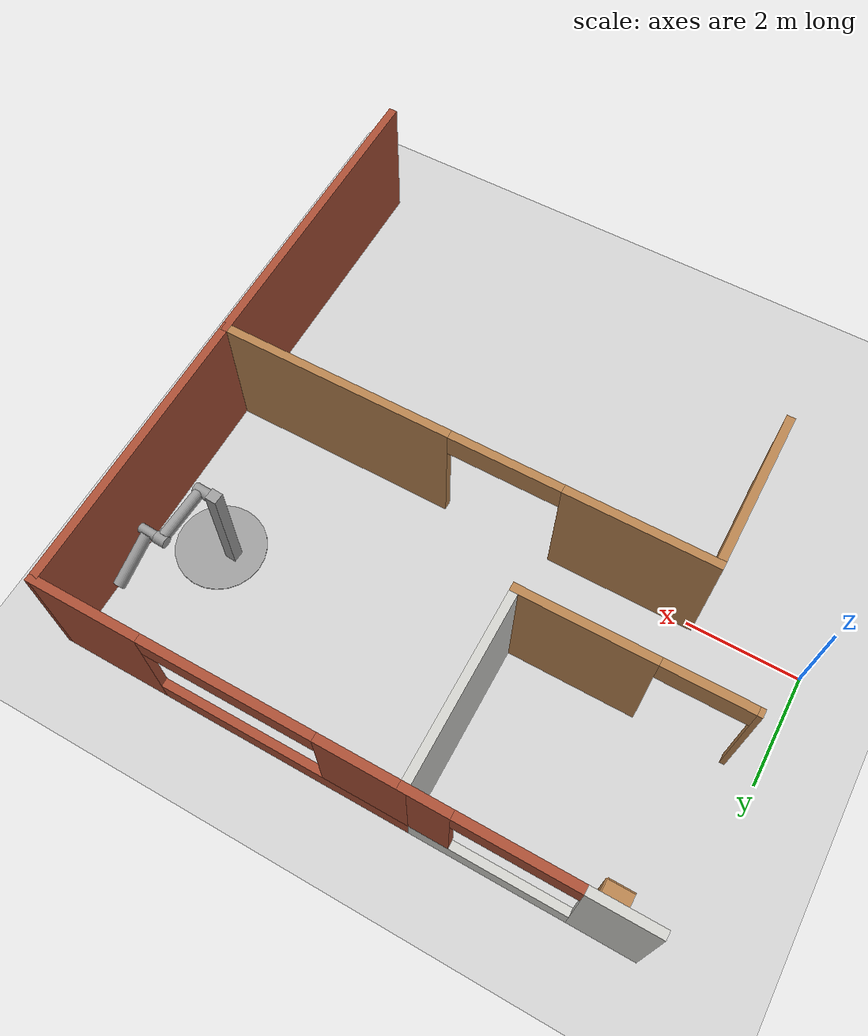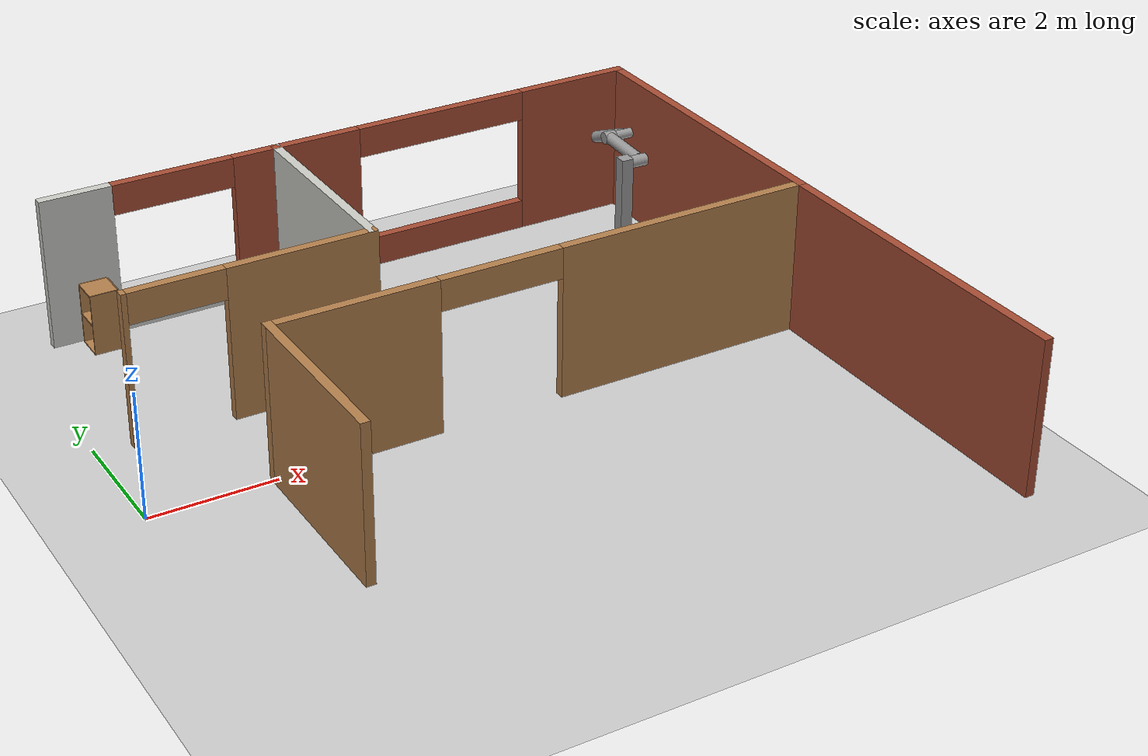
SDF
<sdf version="1.6">
 <world name="default">
  <model name="ground_plane">
   <static>1</static>
   <link name="link">
    <collision name="collision">
     <geometry><plane><normal>0 0 1</normal><size>100 100</size></plane></geometry>
     <surface><friction><ode><mu>100</mu><mu2>50</mu2></ode></friction></surface>
    </collision>
    <visual name="visual">
     <cast_shadows>0</cast_shadows>
     <geometry><plane><normal>0 0 1</normal><size>100 100</size></plane></geometry>
     <material>
      <script><uri>file://media/materials/scripts/gazebo.material</uri><name>Gazebo/Grey</name></script>
     </material>
    </visual>
   </link>
  </model>
  <model name="double_pendulum_with_base">
   <link name="base">
    <inertial>
     <mass>100</mass>
     <inertia><ixx>1</ixx><ixy>0</ixy><ixz>0</ixz><iyy>1</iyy><iyz>0</iyz><izz>1</izz></inertia>
    </inertial>
    <visual name="vis_plate_on_ground">
     <pose>0 0 0.01 0 -0 0</pose>
     <geometry><cylinder><radius>0.8</radius><length>0.02</length></cylinder></geometry>
     <material>
      <script><uri>file://media/materials/scripts/gazebo.material</uri><name>Gazebo/Grey</name></script>
     </material>
    </visual>
    <visual name="vis_pole">
     <pose>-0.275 0 1.1 0 -0 0</pose>
     <geometry><box><size>0.2 0.2 2.2</size></box></geometry>
     <material>
      <script><uri>file://media/materials/scripts/gazebo.material</uri><name>Gazebo/Grey</name></script>
     </material>
    </visual>
    <collision name="col_plate_on_ground">
     <pose>0 0 0.01 0 -0 0</pose>
     <geometry><cylinder><radius>0.8</radius><length>0.02</length></cylinder></geometry>
    </collision>
    <collision name="col_pole">
     <pose>-0.275 0 1.1 0 -0 0</pose>
     <geometry><box><size>0.2 0.2 2.2</size></box></geometry>
    </collision>
   </link>
   <link name="upper_link">
    <pose>0 0 2.1 -1.5708 0 0</pose>
    <inertial>
     <pose>0 0 0.5 0 -0 0</pose>
     <inertia><ixx>1</ixx><ixy>0</ixy><ixz>0</ixz><iyy>1</iyy><iyz>0</iyz><izz>1</izz></inertia>
     <mass>1</mass>
    </inertial>
    <visual name="vis_upper_joint">
     <pose>-0.05 0 0 3.14159 1.57079 3.14159</pose>
     <geometry><cylinder><radius>0.1</radius><length>0.3</length></cylinder></geometry>
     <material>
      <script><uri>file://media/materials/scripts/gazebo.material</uri><name>Gazebo/Grey</name></script>
     </material>
    </visual>
    <visual name="vis_lower_joint">
     <pose>0 0 1 3.14159 1.57079 3.14159</pose>
     <geometry><cylinder><radius>0.1</radius><length>0.2</length></cylinder></geometry>
     <material>
      <script><uri>file://media/materials/scripts/gazebo.material</uri><name>Gazebo/Grey</name></script>
     </material>
    </visual>
    <visual name="vis_cylinder">
     <pose>0 0 0.5 0 -0 0</pose>
     <geometry><cylinder><radius>0.1</radius><length>0.9</length></cylinder></geometry>
     <material>
      <script><uri>file://media/materials/scripts/gazebo.material</uri><name>Gazebo/Grey</name></script>
     </material>
    </visual>
    <collision name="col_upper_joint">
     <pose>-0.05 0 0 3.14159 1.57079 3.14159</pose>
     <geometry><cylinder><radius>0.1</radius><length>0.3</length></cylinder></geometry>
    </collision>
    <collision name="col_lower_joint">
     <pose>0 0 1 3.14159 1.57079 3.14159</pose>
     <geometry><cylinder><radius>0.1</radius><length>0.2</length></cylinder></geometry>
    </collision>
    <collision name="col_cylinder">
     <pose>0 0 0.5 0 -0 0</pose>
     <geometry><cylinder><radius>0.1</radius><length>0.9</length></cylinder></geometry>
    </collision>
   </link>
   <link name="lower_link">
    <pose>0.25 1 2.1 -2 0 0</pose>
    <inertial>
     <pose>0 0 0.5 0 -0 0</pose>
     <inertia><ixx>1</ixx><ixy>0</ixy><ixz>0</ixz><iyy>1</iyy><iyz>0</iyz><izz>1</izz></inertia>
     <mass>1</mass>
    </inertial>
    <visual name="vis_lower_joint">
     <pose>0 0 0 3.14159 1.57079 3.14159</pose>
     <geometry><cylinder><radius>0.08</radius><length>0.3</length></cylinder></geometry>
     <material>
      <script><uri>file://media/materials/scripts/gazebo.material</uri><name>Gazebo/Grey</name></script>
     </material>
    </visual>
    <visual name="vis_cylinder">
     <pose>0 0 0.5 0 -0 0</pose>
     <geometry><cylinder><radius>0.1</radius><length>0.9</length></cylinder></geometry>
     <material>
      <script><uri>file://media/materials/scripts/gazebo.material</uri><name>Gazebo/Grey</name></script>
     </material>
    </visual>
    <collision name="col_lower_joint">
     <pose>0 0 0 3.14159 1.57079 3.14159</pose>
     <geometry><cylinder><radius>0.08</radius><length>0.3</length></cylinder></geometry>
    </collision>
    <collision name="col_cylinder">
     <pose>0 0 0.5 0 -0 0</pose>
     <geometry><cylinder><radius>0.1</radius><length>0.9</length></cylinder></geometry>
    </collision>
   </link>
   <joint name="upper_joint" type="revolute">
    <parent>base</parent>
    <child>upper_link</child>
    <axis>
     <xyz>1 0 0</xyz>
     <use_parent_model_frame>1</use_parent_model_frame>
     <limit><lower>-1e+16</lower><upper>1e+16</upper></limit>
     <dynamics><spring_reference>0</spring_reference><spring_stiffness>0</spring_stiffness></dynamics>
    </axis>
   </joint>
   <joint name="lower_joint" type="revolute">
    <parent>upper_link</parent>
    <child>lower_link</child>
    <axis>
     <xyz>1 0 0</xyz>
     <use_parent_model_frame>1</use_parent_model_frame>
     <limit><lower>-1e+16</lower><upper>1e+16</upper></limit>
     <dynamics><spring_reference>0</spring_reference><spring_stiffness>0</spring_stiffness></dynamics>
    </axis>
   </joint>
   <pose>9.61593 2.60869 -2e-06 0 1.3e-05 -0.050145</pose>
  </model>
  <model name="cabinet">
   <static>1</static>
   <link name="cabinet_bottom_plate">
    <inertial>
     <pose>0 0 -1 0 -0 0</pose>
     <inertia><ixx>2.05</ixx><ixy>0</ixy><ixz>0</ixz><iyy>2.05</iyy><iyz>0</iyz><izz>2.05</izz></inertia>
     <mass>25</mass>
    </inertial>
    <collision name="cabinet_bottom_plate_geom">
     <pose>0 0 0.01 0 -0 0</pose>
     <geometry><box><size>0.45 0.45 0.02</size></box></geometry>
    </collision>
    <visual name="cabinet_bottom_plate_geom_visual">
     <pose>0 0 0.01 0 -0 0</pose>
     <geometry><box><size>0.45 0.45 0.02</size></box></geometry>
     <material>
      <script><uri>file://media/materials/scripts/gazebo.material</uri><name>Gazebo/Wood</name></script>
     </material>
    </visual>
    <collision name="cabinet_bottom_plate_geom_cabinet_back_plate">
     <pose>0.235 0 0.51 0 -0 0</pose>
     <geometry><box><size>0.02 0.45 1.02</size></box></geometry>
    </collision>
    <visual name="cabinet_bottom_plate_geom_cabinet_back_plate_visual">
     <pose>0.235 0 0.51 0 -0 0</pose>
     <geometry><box><size>0.02 0.45 1.02</size></box></geometry>
     <material>
      <script><uri>file://media/materials/scripts/gazebo.material</uri><name>Gazebo/Wood</name></script>
     </material>
    </visual>
    <collision name="cabinet_bottom_plate_geom_cabinet_left_plate">
     <pose>0 0.235 0.51 0 -0 0</pose>
     <geometry><box><size>0.45 0.02 1.02</size></box></geometry>
    </collision>
    <visual name="cabinet_bottom_plate_geom_cabinet_left_plate_visual">
     <pose>0 0.235 0.51 0 -0 0</pose>
     <geometry><box><size>0.45 0.02 1.02</size></box></geometry>
     <material>
      <script><uri>file://media/materials/scripts/gazebo.material</uri><name>Gazebo/Wood</name></script>
     </material>
    </visual>
    <collision name="cabinet_bottom_plate_geom_cabinet_middle_plate">
     <pose>0 0 0.51 0 -0 0</pose>
     <geometry><box><size>0.45 0.45 0.02</size></box></geometry>
    </collision>
    <visual name="cabinet_bottom_plate_geom_cabinet_middle_plate_visual">
     <pose>0 0 0.51 0 -0 0</pose>
     <geometry><box><size>0.45 0.45 0.02</size></box></geometry>
     <material>
      <script><uri>file://media/materials/scripts/gazebo.material</uri><name>Gazebo/Wood</name></script>
     </material>
    </visual>
    <collision name="cabinet_bottom_plate_geom_cabinet_right_plate">
     <pose>0 -0.235 0.51 0 -0 0</pose>
     <geometry><box><size>0.45 0.02 1.02</size></box></geometry>
    </collision>
    <visual name="cabinet_bottom_plate_geom_cabinet_right_plate_visual">
     <pose>0 -0.235 0.51 0 -0 0</pose>
     <geometry><box><size>0.45 0.02 1.02</size></box></geometry>
     <material>
      <script><uri>file://media/materials/scripts/gazebo.material</uri><name>Gazebo/Wood</name></script>
     </material>
    </visual>
    <collision name="cabinet_bottom_plate_geom_cabinet_top_plate">
     <pose>0 0 1.01 0 -0 0</pose>
     <geometry><box><size>0.45 0.45 0.02</size></box></geometry>
    </collision>
    <visual name="cabinet_bottom_plate_geom_cabinet_top_plate_visual">
     <pose>0 0 1.01 0 -0 0</pose>
     <geometry><box><size>0.45 0.45 0.02</size></box></geometry>
     <material>
      <script><uri>file://media/materials/scripts/gazebo.material</uri><name>Gazebo/Wood</name></script>
     </material>
    </visual>
   </link>
   <pose>1.23212 4.82503 0 0 -0 0</pose>
  </model>
  <model name="mybuilding_0_0">
   <link name="Wall_110">
    <pose>7.02969 -0.662398 0 0 -0 1.5708</pose>
    <visual name="Wall_110_Visual">
     <pose>0 0 1.25 0 -0 0</pose>
     <geometry><box><size>5.666 0.15 2.5</size></box></geometry>
     <material>
      <script><uri>file://media/materials/scripts/gazebo.material</uri><name>Gazebo/Bricks</name></script>
      <ambient>1 1 1 1</ambient>
      <diffuse>1 1 1 1</diffuse>
      <specular>0.2 0.2 0.2 1</specular>
      <emissive>0 0 0 1</emissive>
     </material>
    </visual>
    <collision name="Wall_110_Collision">
     <pose>0 0 1.25 0 -0 0</pose>
     <geometry><box><size>5.666 0.15 2.5</size></box></geometry>
     <surface>
      <friction>
       <ode><mu>1</mu><mu2>1</mu2><fdir1>0 0 0</fdir1><slip1>0</slip1><slip2>0</slip2></ode>
       <torsional>
        <coefficient>1</coefficient>
        <patch_radius>0</patch_radius>
        <surface_radius>0</surface_radius>
        <use_patch_radius>1</use_patch_radius>
        <ode><slip>0</slip></ode>
       </torsional>
      </friction>
      <bounce><restitution_coefficient>0</restitution_coefficient><threshold>1e+06</threshold></bounce>
      <contact>
       <collide_without_contact>0</collide_without_contact>
       <collide_without_contact_bitmask>1</collide_without_contact_bitmask>
       <collide_bitmask>1</collide_bitmask>
       <ode>
        <soft_cfm>0</soft_cfm>
        <soft_erp>0.2</soft_erp>
        <kp>1e+13</kp>
        <kd>1</kd>
        <max_vel>0.01</max_vel>
        <min_depth>0</min_depth>
       </ode>
       <bullet>
        <split_impulse>1</split_impulse>
        <split_impulse_penetration_threshold>-0.01</split_impulse_penetration_threshold>
        <soft_cfm>0</soft_cfm>
        <soft_erp>0.2</soft_erp>
        <kp>1e+13</kp>
        <kd>1</kd>
       </bullet>
      </contact>
     </surface>
    </collision>
   </link>
   <link name="Wall_112">
    <pose>2.60469 2.0956 0 0 -0 3.14159</pose>
    <visual name="Wall_112_Visual_0">
     <pose>-2.34058 0 1.25 0 -0 0</pose>
     <geometry><box><size>4.31883 0.15 2.5</size></box></geometry>
     <material>
      <script><uri>file://media/materials/scripts/gazebo.material</uri><name>Gazebo/Wood</name></script>
      <ambient>1 1 0.498039 1</ambient>
      <diffuse>1 1 1 1</diffuse>
      <specular>0.2 0.2 0.2 1</specular>
      <emissive>0 0 0 1</emissive>
     </material>
    </visual>
    <visual name="Wall_112_Visual_1">
     <pose>3.15942 0 1.25 0 -0 0</pose>
     <geometry><box><size>2.68117 0.15 2.5</size></box></geometry>
     <material>
      <script><uri>file://media/materials/scripts/gazebo.material</uri><name>Gazebo/Wood</name></script>
      <ambient>1 1 0.498039 1</ambient>
      <diffuse>1 1 1 1</diffuse>
      <specular>0.2 0.2 0.2 1</specular>
      <emissive>0 0 0 1</emissive>
     </material>
    </visual>
    <visual name="Wall_112_Visual_2">
     <pose>0.81883 0 2.25 0 -0 0</pose>
     <geometry><box><size>2 0.15 0.5</size></box></geometry>
     <material>
      <script><uri>file://media/materials/scripts/gazebo.material</uri><name>Gazebo/Wood</name></script>
      <ambient>1 1 0.498039 1</ambient>
      <diffuse>1 1 1 1</diffuse>
      <specular>0.2 0.2 0.2 1</specular>
      <emissive>0 0 0 1</emissive>
     </material>
    </visual>
    <collision name="Wall_112_Collision_0">
     <pose>-2.34058 0 1.25 0 -0 0</pose>
     <geometry><box><size>4.31883 0.15 2.5</size></box></geometry>
     <surface>
      <friction>
       <ode><mu>1</mu><mu2>1</mu2><fdir1>0 0 0</fdir1><slip1>0</slip1><slip2>0</slip2></ode>
       <torsional>
        <coefficient>1</coefficient>
        <patch_radius>0</patch_radius>
        <surface_radius>0</surface_radius>
        <use_patch_radius>1</use_patch_radius>
        <ode><slip>0</slip></ode>
       </torsional>
      </friction>
      <bounce><restitution_coefficient>0</restitution_coefficient><threshold>1e+06</threshold></bounce>
      <contact>
       <collide_without_contact>0</collide_without_contact>
       <collide_without_contact_bitmask>1</collide_without_contact_bitmask>
       <collide_bitmask>1</collide_bitmask>
       <ode>
        <soft_cfm>0</soft_cfm>
        <soft_erp>0.2</soft_erp>
        <kp>1e+13</kp>
        <kd>1</kd>
        <max_vel>0.01</max_vel>
        <min_depth>0</min_depth>
       </ode>
       <bullet>
        <split_impulse>1</split_impulse>
        <split_impulse_penetration_threshold>-0.01</split_impulse_penetration_threshold>
        <soft_cfm>0</soft_cfm>
        <soft_erp>0.2</soft_erp>
        <kp>1e+13</kp>
        <kd>1</kd>
       </bullet>
      </contact>
     </surface>
    </collision>
    <collision name="Wall_112_Collision_1">
     <pose>3.15942 0 1.25 0 -0 0</pose>
     <geometry><box><size>2.68117 0.15 2.5</size></box></geometry>
     <surface>
      <friction>
       <ode><mu>1</mu><mu2>1</mu2><fdir1>0 0 0</fdir1><slip1>0</slip1><slip2>0</slip2></ode>
       <torsional>
        <coefficient>1</coefficient>
        <patch_radius>0</patch_radius>
        <surface_radius>0</surface_radius>
        <use_patch_radius>1</use_patch_radius>
        <ode><slip>0</slip></ode>
       </torsional>
      </friction>
      <bounce><restitution_coefficient>0</restitution_coefficient><threshold>1e+06</threshold></bounce>
      <contact>
       <collide_without_contact>0</collide_without_contact>
       <collide_without_contact_bitmask>1</collide_without_contact_bitmask>
       <collide_bitmask>1</collide_bitmask>
       <ode>
        <soft_cfm>0</soft_cfm>
        <soft_erp>0.2</soft_erp>
        <kp>1e+13</kp>
        <kd>1</kd>
        <max_vel>0.01</max_vel>
        <min_depth>0</min_depth>
       </ode>
       <bullet>
        <split_impulse>1</split_impulse>
        <split_impulse_penetration_threshold>-0.01</split_impulse_penetration_threshold>
        <soft_cfm>0</soft_cfm>
        <soft_erp>0.2</soft_erp>
        <kp>1e+13</kp>
        <kd>1</kd>
       </bullet>
      </contact>
     </surface>
    </collision>
    <collision name="Wall_112_Collision_2">
     <pose>0.81883 0 2.25 0 -0 0</pose>
     <geometry><box><size>2 0.15 0.5</size></box></geometry>
     <surface>
      <friction>
       <ode><mu>1</mu><mu2>1</mu2><fdir1>0 0 0</fdir1><slip1>0</slip1><slip2>0</slip2></ode>
       <torsional>
        <coefficient>1</coefficient>
        <patch_radius>0</patch_radius>
        <surface_radius>0</surface_radius>
        <use_patch_radius>1</use_patch_radius>
        <ode><slip>0</slip></ode>
       </torsional>
      </friction>
      <bounce><restitution_coefficient>0</restitution_coefficient><threshold>1e+06</threshold></bounce>
      <contact>
       <collide_without_contact>0</collide_without_contact>
       <collide_without_contact_bitmask>1</collide_without_contact_bitmask>
       <collide_bitmask>1</collide_bitmask>
       <ode>
        <soft_cfm>0</soft_cfm>
        <soft_erp>0.2</soft_erp>
        <kp>1e+13</kp>
        <kd>1</kd>
        <max_vel>0.01</max_vel>
        <min_depth>0</min_depth>
       </ode>
       <bullet>
        <split_impulse>1</split_impulse>
        <split_impulse_penetration_threshold>-0.01</split_impulse_penetration_threshold>
        <soft_cfm>0</soft_cfm>
        <soft_erp>0.2</soft_erp>
        <kp>1e+13</kp>
        <kd>1</kd>
       </bullet>
      </contact>
     </surface>
    </collision>
   </link>
   <link name="Wall_114">
    <pose>7.02493 4.68743 0 0 -0 1.57263</pose>
    <visual name="Wall_114_Visual">
     <pose>0 0 1.25 0 -0 0</pose>
     <geometry><box><size>5.33367 0.15 2.5</size></box></geometry>
     <material>
      <script><uri>file://media/materials/scripts/gazebo.material</uri><name>Gazebo/Bricks</name></script>
      <ambient>1 1 1 1</ambient>
      <diffuse>1 1 1 1</diffuse>
      <specular>0.2 0.2 0.2 1</specular>
      <emissive>0 0 0 1</emissive>
     </material>
    </visual>
    <collision name="Wall_114_Collision">
     <pose>0 0 1.25 0 -0 0</pose>
     <geometry><box><size>5.33367 0.15 2.5</size></box></geometry>
     <surface>
      <friction>
       <ode><mu>1</mu><mu2>1</mu2><fdir1>0 0 0</fdir1><slip1>0</slip1><slip2>0</slip2></ode>
       <torsional>
        <coefficient>1</coefficient>
        <patch_radius>0</patch_radius>
        <surface_radius>0</surface_radius>
        <use_patch_radius>1</use_patch_radius>
        <ode><slip>0</slip></ode>
       </torsional>
      </friction>
      <bounce><restitution_coefficient>0</restitution_coefficient><threshold>1e+06</threshold></bounce>
      <contact>
       <collide_without_contact>0</collide_without_contact>
       <collide_without_contact_bitmask>1</collide_without_contact_bitmask>
       <collide_bitmask>1</collide_bitmask>
       <ode>
        <soft_cfm>0</soft_cfm>
        <soft_erp>0.2</soft_erp>
        <kp>1e+13</kp>
        <kd>1</kd>
        <max_vel>0.01</max_vel>
        <min_depth>0</min_depth>
       </ode>
       <bullet>
        <split_impulse>1</split_impulse>
        <split_impulse_penetration_threshold>-0.01</split_impulse_penetration_threshold>
        <soft_cfm>0</soft_cfm>
        <soft_erp>0.2</soft_erp>
        <kp>1e+13</kp>
        <kd>1</kd>
       </bullet>
      </contact>
     </surface>
    </collision>
   </link>
   <link name="Wall_119">
    <pose>3.84517 7.27926 0 0 -0 3.14159</pose>
    <visual name="Wall_119_Visual_0">
     <pose>-2.25429 0 1.25 0 -0 0</pose>
     <geometry><box><size>1.99143 0.15 2.5</size></box></geometry>
     <material>
      <script><uri>file://media/materials/scripts/gazebo.material</uri><name>Gazebo/Bricks</name></script>
      <ambient>1 1 1 1</ambient>
      <diffuse>1 1 1 1</diffuse>
      <specular>0.2 0.2 0.2 1</specular>
      <emissive>0 0 0 1</emissive>
     </material>
    </visual>
    <visual name="Wall_119_Visual_1">
     <pose>0.995713 0 0.25 0 -0 0</pose>
     <geometry><box><size>4.50857 0.15 0.5</size></box></geometry>
     <material>
      <script><uri>file://media/materials/scripts/gazebo.material</uri><name>Gazebo/Bricks</name></script>
      <ambient>1 1 1 1</ambient>
      <diffuse>1 1 1 1</diffuse>
      <specular>0.2 0.2 0.2 1</specular>
      <emissive>0 0 0 1</emissive>
     </material>
    </visual>
    <visual name="Wall_119_Visual_2">
     <pose>2.49571 0 1.5 0 -0 0</pose>
     <geometry><box><size>1.50857 0.15 2</size></box></geometry>
     <material>
      <script><uri>file://media/materials/scripts/gazebo.material</uri><name>Gazebo/Bricks</name></script>
      <ambient>1 1 1 1</ambient>
      <diffuse>1 1 1 1</diffuse>
      <specular>0.2 0.2 0.2 1</specular>
      <emissive>0 0 0 1</emissive>
     </material>
    </visual>
    <visual name="Wall_119_Visual_3">
     <pose>0.241426 0 2.25 0 -0 0</pose>
     <geometry><box><size>3 0.15 0.5</size></box></geometry>
     <material>
      <script><uri>file://media/materials/scripts/gazebo.material</uri><name>Gazebo/Bricks</name></script>
      <ambient>1 1 1 1</ambient>
      <diffuse>1 1 1 1</diffuse>
      <specular>0.2 0.2 0.2 1</specular>
      <emissive>0 0 0 1</emissive>
     </material>
    </visual>
    <collision name="Wall_119_Collision_0">
     <pose>-2.25429 0 1.25 0 -0 0</pose>
     <geometry><box><size>1.99143 0.15 2.5</size></box></geometry>
     <surface>
      <friction>
       <ode><mu>1</mu><mu2>1</mu2><fdir1>0 0 0</fdir1><slip1>0</slip1><slip2>0</slip2></ode>
       <torsional>
        <coefficient>1</coefficient>
        <patch_radius>0</patch_radius>
        <surface_radius>0</surface_radius>
        <use_patch_radius>1</use_patch_radius>
        <ode><slip>0</slip></ode>
       </torsional>
      </friction>
      <bounce><restitution_coefficient>0</restitution_coefficient><threshold>1e+06</threshold></bounce>
      <contact>
       <collide_without_contact>0</collide_without_contact>
       <collide_without_contact_bitmask>1</collide_without_contact_bitmask>
       <collide_bitmask>1</collide_bitmask>
       <ode>
        <soft_cfm>0</soft_cfm>
        <soft_erp>0.2</soft_erp>
        <kp>1e+13</kp>
        <kd>1</kd>
        <max_vel>0.01</max_vel>
        <min_depth>0</min_depth>
       </ode>
       <bullet>
        <split_impulse>1</split_impulse>
        <split_impulse_penetration_threshold>-0.01</split_impulse_penetration_threshold>
        <soft_cfm>0</soft_cfm>
        <soft_erp>0.2</soft_erp>
        <kp>1e+13</kp>
        <kd>1</kd>
       </bullet>
      </contact>
     </surface>
    </collision>
    <collision name="Wall_119_Collision_1">
     <pose>0.995713 0 0.25 0 -0 0</pose>
     <geometry><box><size>4.50857 0.15 0.5</size></box></geometry>
     <surface>
      <friction>
       <ode><mu>1</mu><mu2>1</mu2><fdir1>0 0 0</fdir1><slip1>0</slip1><slip2>0</slip2></ode>
       <torsional>
        <coefficient>1</coefficient>
        <patch_radius>0</patch_radius>
        <surface_radius>0</surface_radius>
        <use_patch_radius>1</use_patch_radius>
        <ode><slip>0</slip></ode>
       </torsional>
      </friction>
      <bounce><restitution_coefficient>0</restitution_coefficient><threshold>1e+06</threshold></bounce>
      <contact>
       <collide_without_contact>0</collide_without_contact>
       <collide_without_contact_bitmask>1</collide_without_contact_bitmask>
       <collide_bitmask>1</collide_bitmask>
       <ode>
        <soft_cfm>0</soft_cfm>
        <soft_erp>0.2</soft_erp>
        <kp>1e+13</kp>
        <kd>1</kd>
        <max_vel>0.01</max_vel>
        <min_depth>0</min_depth>
       </ode>
       <bullet>
        <split_impulse>1</split_impulse>
        <split_impulse_penetration_threshold>-0.01</split_impulse_penetration_threshold>
        <soft_cfm>0</soft_cfm>
        <soft_erp>0.2</soft_erp>
        <kp>1e+13</kp>
        <kd>1</kd>
       </bullet>
      </contact>
     </surface>
    </collision>
    <collision name="Wall_119_Collision_2">
     <pose>2.49571 0 1.5 0 -0 0</pose>
     <geometry><box><size>1.50857 0.15 2</size></box></geometry>
     <surface>
      <friction>
       <ode><mu>1</mu><mu2>1</mu2><fdir1>0 0 0</fdir1><slip1>0</slip1><slip2>0</slip2></ode>
       <torsional>
        <coefficient>1</coefficient>
        <patch_radius>0</patch_radius>
        <surface_radius>0</surface_radius>
        <use_patch_radius>1</use_patch_radius>
        <ode><slip>0</slip></ode>
       </torsional>
      </friction>
      <bounce><restitution_coefficient>0</restitution_coefficient><threshold>1e+06</threshold></bounce>
      <contact>
       <collide_without_contact>0</collide_without_contact>
       <collide_without_contact_bitmask>1</collide_without_contact_bitmask>
       <collide_bitmask>1</collide_bitmask>
       <ode>
        <soft_cfm>0</soft_cfm>
        <soft_erp>0.2</soft_erp>
        <kp>1e+13</kp>
        <kd>1</kd>
        <max_vel>0.01</max_vel>
        <min_depth>0</min_depth>
       </ode>
       <bullet>
        <split_impulse>1</split_impulse>
        <split_impulse_penetration_threshold>-0.01</split_impulse_penetration_threshold>
        <soft_cfm>0</soft_cfm>
        <soft_erp>0.2</soft_erp>
        <kp>1e+13</kp>
        <kd>1</kd>
       </bullet>
      </contact>
     </surface>
    </collision>
    <collision name="Wall_119_Collision_3">
     <pose>0.241426 0 2.25 0 -0 0</pose>
     <geometry><box><size>3 0.15 0.5</size></box></geometry>
     <surface>
      <friction>
       <ode><mu>1</mu><mu2>1</mu2><fdir1>0 0 0</fdir1><slip1>0</slip1><slip2>0</slip2></ode>
       <torsional>
        <coefficient>1</coefficient>
        <patch_radius>0</patch_radius>
        <surface_radius>0</surface_radius>
        <use_patch_radius>1</use_patch_radius>
        <ode><slip>0</slip></ode>
       </torsional>
      </friction>
      <bounce><restitution_coefficient>0</restitution_coefficient><threshold>1e+06</threshold></bounce>
      <contact>
       <collide_without_contact>0</collide_without_contact>
       <collide_without_contact_bitmask>1</collide_without_contact_bitmask>
       <collide_bitmask>1</collide_bitmask>
       <ode>
        <soft_cfm>0</soft_cfm>
        <soft_erp>0.2</soft_erp>
        <kp>1e+13</kp>
        <kd>1</kd>
        <max_vel>0.01</max_vel>
        <min_depth>0</min_depth>
       </ode>
       <bullet>
        <split_impulse>1</split_impulse>
        <split_impulse_penetration_threshold>-0.01</split_impulse_penetration_threshold>
        <soft_cfm>0</soft_cfm>
        <soft_erp>0.2</soft_erp>
        <kp>1e+13</kp>
        <kd>1</kd>
       </bullet>
      </contact>
     </surface>
    </collision>
   </link>
   <link name="Wall_121">
    <pose>0.670175 5.60426 0 0 0 -1.5708</pose>
    <visual name="Wall_121_Visual">
     <pose>0 0 1.25 0 -0 0</pose>
     <geometry><box><size>3.5 0.15 2.5</size></box></geometry>
     <material>
      <script><uri>file://media/materials/scripts/gazebo.material</uri><name>Gazebo/CeilingTiled</name></script>
      <ambient>0.333333 0.333333 0.498039 1</ambient>
      <diffuse>1 1 1 1</diffuse>
      <specular>0 0 0 1</specular>
      <emissive>0 0 0 1</emissive>
     </material>
    </visual>
    <collision name="Wall_121_Collision">
     <pose>0 0 1.25 0 -0 0</pose>
     <geometry><box><size>3.5 0.15 2.5</size></box></geometry>
     <surface>
      <friction>
       <ode><mu>1</mu><mu2>1</mu2><fdir1>0 0 0</fdir1><slip1>0</slip1><slip2>0</slip2></ode>
       <torsional>
        <coefficient>1</coefficient>
        <patch_radius>0</patch_radius>
        <surface_radius>0</surface_radius>
        <use_patch_radius>1</use_patch_radius>
        <ode><slip>0</slip></ode>
       </torsional>
      </friction>
      <bounce><restitution_coefficient>0</restitution_coefficient><threshold>1e+06</threshold></bounce>
      <contact>
       <collide_without_contact>0</collide_without_contact>
       <collide_without_contact_bitmask>1</collide_without_contact_bitmask>
       <collide_bitmask>1</collide_bitmask>
       <ode>
        <soft_cfm>0</soft_cfm>
        <soft_erp>0.2</soft_erp>
        <kp>1e+13</kp>
        <kd>1</kd>
        <max_vel>0.01</max_vel>
        <min_depth>0</min_depth>
       </ode>
       <bullet>
        <split_impulse>1</split_impulse>
        <split_impulse_penetration_threshold>-0.01</split_impulse_penetration_threshold>
        <soft_cfm>0</soft_cfm>
        <soft_erp>0.2</soft_erp>
        <kp>1e+13</kp>
        <kd>1</kd>
       </bullet>
      </contact>
     </surface>
    </collision>
   </link>
   <link name="Wall_123">
    <pose>-1.25483 3.92926 0 0 -0 3.14159</pose>
    <inertial>
     <mass>1</mass>
     <inertia><ixx>1</ixx><ixy>0</ixy><ixz>0</ixz><iyy>1</iyy><iyz>0</iyz><izz>1</izz></inertia>
    </inertial>
    <visual name="Wall_123_Visual_1">
     <pose>1.95688 0 1.25 0 -0 0</pose>
     <geometry><box><size>0.086235 0.15 2.5</size></box></geometry>
     <material>
      <script><uri>file://media/materials/scripts/gazebo.material</uri><name>Gazebo/Wood</name></script>
      <ambient>1 1 1 1</ambient>
      <diffuse>1 1 1 1</diffuse>
      <specular>0.2 0.2 0.2 1</specular>
      <emissive>0 0 0 1</emissive>
      <shader type="vertex"><normal_map>__default__</normal_map></shader>
     </material>
    </visual>
    <visual name="Wall_123_Visual_0">
     <pose>-0.793117 0 1.25 0 -0 0</pose>
     <geometry><box><size>2.41377 0.15 2.5</size></box></geometry>
     <material>
      <script><uri>file://media/materials/scripts/gazebo.material</uri><name>Gazebo/Wood</name></script>
      <ambient>1 1 1 1</ambient>
      <diffuse>1 1 1 1</diffuse>
      <specular>0.2 0.2 0.2 1</specular>
      <emissive>0 0 0 1</emissive>
      <shader type="vertex"><normal_map>__default__</normal_map></shader>
     </material>
    </visual>
    <visual name="Wall_123_Visual_2">
     <pose>1.16376 0 2.25 0 -0 0</pose>
     <geometry><box><size>1.5 0.15 0.5</size></box></geometry>
     <material>
      <script><uri>file://media/materials/scripts/gazebo.material</uri><name>Gazebo/Wood</name></script>
      <ambient>1 1 1 1</ambient>
      <diffuse>1 1 1 1</diffuse>
      <specular>0.2 0.2 0.2 1</specular>
      <emissive>0 0 0 1</emissive>
      <shader type="vertex"><normal_map>__default__</normal_map></shader>
     </material>
    </visual>
    <collision name="Wall_123_Collision_0">
     <pose>-0.793117 0 1.25 0 -0 0</pose>
     <geometry><box><size>2.41377 0.15 2.5</size></box></geometry>
     <surface>
      <friction>
       <ode><mu>1</mu><mu2>1</mu2><fdir1>0 0 0</fdir1><slip1>0</slip1><slip2>0</slip2></ode>
       <torsional>
        <coefficient>1</coefficient>
        <patch_radius>0</patch_radius>
        <surface_radius>0</surface_radius>
        <use_patch_radius>1</use_patch_radius>
        <ode><slip>0</slip></ode>
       </torsional>
      </friction>
      <bounce><restitution_coefficient>0</restitution_coefficient><threshold>1e+06</threshold></bounce>
      <contact>
       <collide_without_contact>0</collide_without_contact>
       <collide_without_contact_bitmask>1</collide_without_contact_bitmask>
       <collide_bitmask>1</collide_bitmask>
       <ode>
        <soft_cfm>0</soft_cfm>
        <soft_erp>0.2</soft_erp>
        <kp>1e+13</kp>
        <kd>1</kd>
        <max_vel>0.01</max_vel>
        <min_depth>0</min_depth>
       </ode>
       <bullet>
        <split_impulse>1</split_impulse>
        <split_impulse_penetration_threshold>-0.01</split_impulse_penetration_threshold>
        <soft_cfm>0</soft_cfm>
        <soft_erp>0.2</soft_erp>
        <kp>1e+13</kp>
        <kd>1</kd>
       </bullet>
      </contact>
     </surface>
    </collision>
    <collision name="Wall_123_Collision_1">
     <pose>1.95688 0 1.25 0 -0 0</pose>
     <geometry><box><size>0.086235 0.15 2.5</size></box></geometry>
     <surface>
      <friction>
       <ode><mu>1</mu><mu2>1</mu2><fdir1>0 0 0</fdir1><slip1>0</slip1><slip2>0</slip2></ode>
       <torsional>
        <coefficient>1</coefficient>
        <patch_radius>0</patch_radius>
        <surface_radius>0</surface_radius>
        <use_patch_radius>1</use_patch_radius>
        <ode><slip>0</slip></ode>
       </torsional>
      </friction>
      <bounce><restitution_coefficient>0</restitution_coefficient><threshold>1e+06</threshold></bounce>
      <contact>
       <collide_without_contact>0</collide_without_contact>
       <collide_without_contact_bitmask>1</collide_without_contact_bitmask>
       <collide_bitmask>1</collide_bitmask>
       <ode>
        <soft_cfm>0</soft_cfm>
        <soft_erp>0.2</soft_erp>
        <kp>1e+13</kp>
        <kd>1</kd>
        <max_vel>0.01</max_vel>
        <min_depth>0</min_depth>
       </ode>
       <bullet>
        <split_impulse>1</split_impulse>
        <split_impulse_penetration_threshold>-0.01</split_impulse_penetration_threshold>
        <soft_cfm>0</soft_cfm>
        <soft_erp>0.2</soft_erp>
        <kp>1e+13</kp>
        <kd>1</kd>
       </bullet>
      </contact>
     </surface>
    </collision>
    <collision name="Wall_123_Collision_2">
     <pose>1.16376 0 2.25 0 -0 0</pose>
     <geometry><box><size>1.5 0.15 0.5</size></box></geometry>
     <surface>
      <friction>
       <ode><mu>1</mu><mu2>1</mu2><fdir1>0 0 0</fdir1><slip1>0</slip1><slip2>0</slip2></ode>
       <torsional>
        <coefficient>1</coefficient>
        <patch_radius>0</patch_radius>
        <surface_radius>0</surface_radius>
        <use_patch_radius>1</use_patch_radius>
        <ode><slip>0</slip></ode>
       </torsional>
      </friction>
      <bounce><restitution_coefficient>0</restitution_coefficient><threshold>1e+06</threshold></bounce>
      <contact>
       <collide_without_contact>0</collide_without_contact>
       <collide_without_contact_bitmask>1</collide_without_contact_bitmask>
       <collide_bitmask>1</collide_bitmask>
       <ode>
        <soft_cfm>0</soft_cfm>
        <soft_erp>0.2</soft_erp>
        <kp>1e+13</kp>
        <kd>1</kd>
        <max_vel>0.01</max_vel>
        <min_depth>0</min_depth>
       </ode>
       <bullet>
        <split_impulse>1</split_impulse>
        <split_impulse_penetration_threshold>-0.01</split_impulse_penetration_threshold>
        <soft_cfm>0</soft_cfm>
        <soft_erp>0.2</soft_erp>
        <kp>1e+13</kp>
        <kd>1</kd>
       </bullet>
      </contact>
     </surface>
    </collision>
   </link>
   <link name="Wall_125">
    <pose>-1.25483 7.27926 0 0 -0 0</pose>
    <inertial>
     <mass>1</mass>
     <inertia><ixx>1</ixx><ixy>0</ixy><ixz>0</ixz><iyy>1</iyy><iyz>0</iyz><izz>1</izz></inertia>
    </inertial>
    <visual name="Wall_125_Visual_0">
     <pose>-1.41847 0 1.25 0 -0 0</pose>
     <geometry><box><size>1.16306 0.15 2.5</size></box></geometry>
     <material>
      <script><uri>file://media/materials/scripts/gazebo.material</uri><name>Gazebo/CeilingTiled</name></script>
      <ambient>1 1 1 1</ambient>
      <diffuse>1 1 1 1</diffuse>
      <specular>0.2 0.2 0.2 1</specular>
      <emissive>0 0 0 1</emissive>
      <shader type="vertex"><normal_map>__default__</normal_map></shader>
     </material>
    </visual>
    <visual name="Wall_125_Visual_1">
     <pose>0.581531 0 0.25 0 -0 0</pose>
     <geometry><box><size>2.83694 0.15 0.5</size></box></geometry>
     <material>
      <script><uri>file://media/materials/scripts/gazebo.material</uri><name>Gazebo/CeilingTiled</name></script>
      <ambient>1 1 1 1</ambient>
      <diffuse>1 1 1 1</diffuse>
      <specular>0.2 0.2 0.2 1</specular>
      <emissive>0 0 0 1</emissive>
      <shader type="vertex"><normal_map>__default__</normal_map></shader>
     </material>
    </visual>
    <visual name="Wall_125_Visual_3">
     <pose>0.163061 0 2.25 0 -0 0</pose>
     <geometry><box><size>2 0.15 0.5</size></box></geometry>
     <material>
      <script><uri>file://media/materials/scripts/gazebo.material</uri><name>Gazebo/Bricks</name></script>
      <ambient>1 1 1 1</ambient>
      <diffuse>1 1 1 1</diffuse>
      <specular>0.2 0.2 0.2 1</specular>
      <emissive>0 0 0 1</emissive>
      <shader type="vertex"><normal_map>__default__</normal_map></shader>
     </material>
    </visual>
    <visual name="Wall_125_Visual_2">
     <pose>1.58153 0 1.5 0 -0 0</pose>
     <geometry><box><size>0.836939 0.15 2</size></box></geometry>
     <material>
      <script><uri>file://media/materials/scripts/gazebo.material</uri><name>Gazebo/Bricks</name></script>
      <ambient>1 1 1 1</ambient>
      <diffuse>1 1 1 1</diffuse>
      <specular>0.2 0.2 0.2 1</specular>
      <emissive>0 0 0 1</emissive>
      <shader type="vertex"><normal_map>__default__</normal_map></shader>
     </material>
    </visual>
    <collision name="Wall_125_Collision_2">
     <pose>1.58153 0 1.5 0 -0 0</pose>
     <geometry><box><size>0.836939 0.15 2</size></box></geometry>
     <surface>
      <friction>
       <ode><mu>1</mu><mu2>1</mu2><fdir1>0 0 0</fdir1><slip1>0</slip1><slip2>0</slip2></ode>
       <torsional>
        <coefficient>1</coefficient>
        <patch_radius>0</patch_radius>
        <surface_radius>0</surface_radius>
        <use_patch_radius>1</use_patch_radius>
        <ode><slip>0</slip></ode>
       </torsional>
      </friction>
      <bounce><restitution_coefficient>0</restitution_coefficient><threshold>1e+06</threshold></bounce>
      <contact>
       <collide_without_contact>0</collide_without_contact>
       <collide_without_contact_bitmask>1</collide_without_contact_bitmask>
       <collide_bitmask>1</collide_bitmask>
       <ode>
        <soft_cfm>0</soft_cfm>
        <soft_erp>0.2</soft_erp>
        <kp>1e+13</kp>
        <kd>1</kd>
        <max_vel>0.01</max_vel>
        <min_depth>0</min_depth>
       </ode>
       <bullet>
        <split_impulse>1</split_impulse>
        <split_impulse_penetration_threshold>-0.01</split_impulse_penetration_threshold>
        <soft_cfm>0</soft_cfm>
        <soft_erp>0.2</soft_erp>
        <kp>1e+13</kp>
        <kd>1</kd>
       </bullet>
      </contact>
     </surface>
    </collision>
    <collision name="Wall_125_Collision_0">
     <pose>-1.41847 0 1.25 0 -0 0</pose>
     <geometry><box><size>1.16306 0.15 2.5</size></box></geometry>
     <surface>
      <friction>
       <ode><mu>1</mu><mu2>1</mu2><fdir1>0 0 0</fdir1><slip1>0</slip1><slip2>0</slip2></ode>
       <torsional>
        <coefficient>1</coefficient>
        <patch_radius>0</patch_radius>
        <surface_radius>0</surface_radius>
        <use_patch_radius>1</use_patch_radius>
        <ode><slip>0</slip></ode>
       </torsional>
      </friction>
      <bounce><restitution_coefficient>0</restitution_coefficient><threshold>1e+06</threshold></bounce>
      <contact>
       <collide_without_contact>0</collide_without_contact>
       <collide_without_contact_bitmask>1</collide_without_contact_bitmask>
       <collide_bitmask>1</collide_bitmask>
       <ode>
        <soft_cfm>0</soft_cfm>
        <soft_erp>0.2</soft_erp>
        <kp>1e+13</kp>
        <kd>1</kd>
        <max_vel>0.01</max_vel>
        <min_depth>0</min_depth>
       </ode>
       <bullet>
        <split_impulse>1</split_impulse>
        <split_impulse_penetration_threshold>-0.01</split_impulse_penetration_threshold>
        <soft_cfm>0</soft_cfm>
        <soft_erp>0.2</soft_erp>
        <kp>1e+13</kp>
        <kd>1</kd>
       </bullet>
      </contact>
     </surface>
    </collision>
    <collision name="Wall_125_Collision_1">
     <pose>0.581531 0 0.25 0 -0 0</pose>
     <geometry><box><size>2.83694 0.15 0.5</size></box></geometry>
     <surface>
      <friction>
       <ode><mu>1</mu><mu2>1</mu2><fdir1>0 0 0</fdir1><slip1>0</slip1><slip2>0</slip2></ode>
       <torsional>
        <coefficient>1</coefficient>
        <patch_radius>0</patch_radius>
        <surface_radius>0</surface_radius>
        <use_patch_radius>1</use_patch_radius>
        <ode><slip>0</slip></ode>
       </torsional>
      </friction>
      <bounce><restitution_coefficient>0</restitution_coefficient><threshold>1e+06</threshold></bounce>
      <contact>
       <collide_without_contact>0</collide_without_contact>
       <collide_without_contact_bitmask>1</collide_without_contact_bitmask>
       <collide_bitmask>1</collide_bitmask>
       <ode>
        <soft_cfm>0</soft_cfm>
        <soft_erp>0.2</soft_erp>
        <kp>1e+13</kp>
        <kd>1</kd>
        <max_vel>0.01</max_vel>
        <min_depth>0</min_depth>
       </ode>
       <bullet>
        <split_impulse>1</split_impulse>
        <split_impulse_penetration_threshold>-0.01</split_impulse_penetration_threshold>
        <soft_cfm>0</soft_cfm>
        <soft_erp>0.2</soft_erp>
        <kp>1e+13</kp>
        <kd>1</kd>
       </bullet>
      </contact>
     </surface>
    </collision>
    <collision name="Wall_125_Collision_3">
     <pose>0.163061 0 2.25 0 -0 0</pose>
     <geometry><box><size>2 0.15 0.5</size></box></geometry>
     <surface>
      <friction>
       <ode><mu>1</mu><mu2>1</mu2><fdir1>0 0 0</fdir1><slip1>0</slip1><slip2>0</slip2></ode>
       <torsional>
        <coefficient>1</coefficient>
        <patch_radius>0</patch_radius>
        <surface_radius>0</surface_radius>
        <use_patch_radius>1</use_patch_radius>
        <ode><slip>0</slip></ode>
       </torsional>
      </friction>
      <bounce><restitution_coefficient>0</restitution_coefficient><threshold>1e+06</threshold></bounce>
      <contact>
       <collide_without_contact>0</collide_without_contact>
       <collide_without_contact_bitmask>1</collide_without_contact_bitmask>
       <collide_bitmask>1</collide_bitmask>
       <ode>
        <soft_cfm>0</soft_cfm>
        <soft_erp>0.2</soft_erp>
        <kp>1e+13</kp>
        <kd>1</kd>
        <max_vel>0.01</max_vel>
        <min_depth>0</min_depth>
       </ode>
       <bullet>
        <split_impulse>1</split_impulse>
        <split_impulse_penetration_threshold>-0.01</split_impulse_penetration_threshold>
        <soft_cfm>0</soft_cfm>
        <soft_erp>0.2</soft_erp>
        <kp>1e+13</kp>
        <kd>1</kd>
       </bullet>
      </contact>
     </surface>
    </collision>
   </link>
   <link name="Wall_132">
    <pose>-1.82031 0.670602 0 0 0 -1.5708</pose>
    <visual name="Wall_132_Visual">
     <pose>0 0 1.25 0 -0 0</pose>
     <geometry><box><size>3 0.15 2.5</size></box></geometry>
     <material>
      <script><uri>file://media/materials/scripts/gazebo.material</uri><name>Gazebo/Wood</name></script>
      <ambient>1 1 1 1</ambient>
      <diffuse>1 1 1 1</diffuse>
      <specular>0.2 0.2 0.2 1</specular>
      <emissive>0 0 0 1</emissive>
     </material>
    </visual>
    <collision name="Wall_132_Collision">
     <pose>0 0 1.25 0 -0 0</pose>
     <geometry><box><size>3 0.15 2.5</size></box></geometry>
     <surface>
      <friction>
       <ode><mu>1</mu><mu2>1</mu2><fdir1>0 0 0</fdir1><slip1>0</slip1><slip2>0</slip2></ode>
       <torsional>
        <coefficient>1</coefficient>
        <patch_radius>0</patch_radius>
        <surface_radius>0</surface_radius>
        <use_patch_radius>1</use_patch_radius>
        <ode><slip>0</slip></ode>
       </torsional>
      </friction>
      <bounce><restitution_coefficient>0</restitution_coefficient><threshold>1e+06</threshold></bounce>
      <contact>
       <collide_without_contact>0</collide_without_contact>
       <collide_without_contact_bitmask>1</collide_without_contact_bitmask>
       <collide_bitmask>1</collide_bitmask>
       <ode>
        <soft_cfm>0</soft_cfm>
        <soft_erp>0.2</soft_erp>
        <kp>1e+13</kp>
        <kd>1</kd>
        <max_vel>0.01</max_vel>
        <min_depth>0</min_depth>
       </ode>
       <bullet>
        <split_impulse>1</split_impulse>
        <split_impulse_penetration_threshold>-0.01</split_impulse_penetration_threshold>
        <soft_cfm>0</soft_cfm>
        <soft_erp>0.2</soft_erp>
        <kp>1e+13</kp>
        <kd>1</kd>
       </bullet>
      </contact>
     </surface>
    </collision>
   </link>
   <static>1</static>
   <pose>3.78931 -2.0956 0 0 -0 0</pose>
  </model>
 </world>
</sdf>
